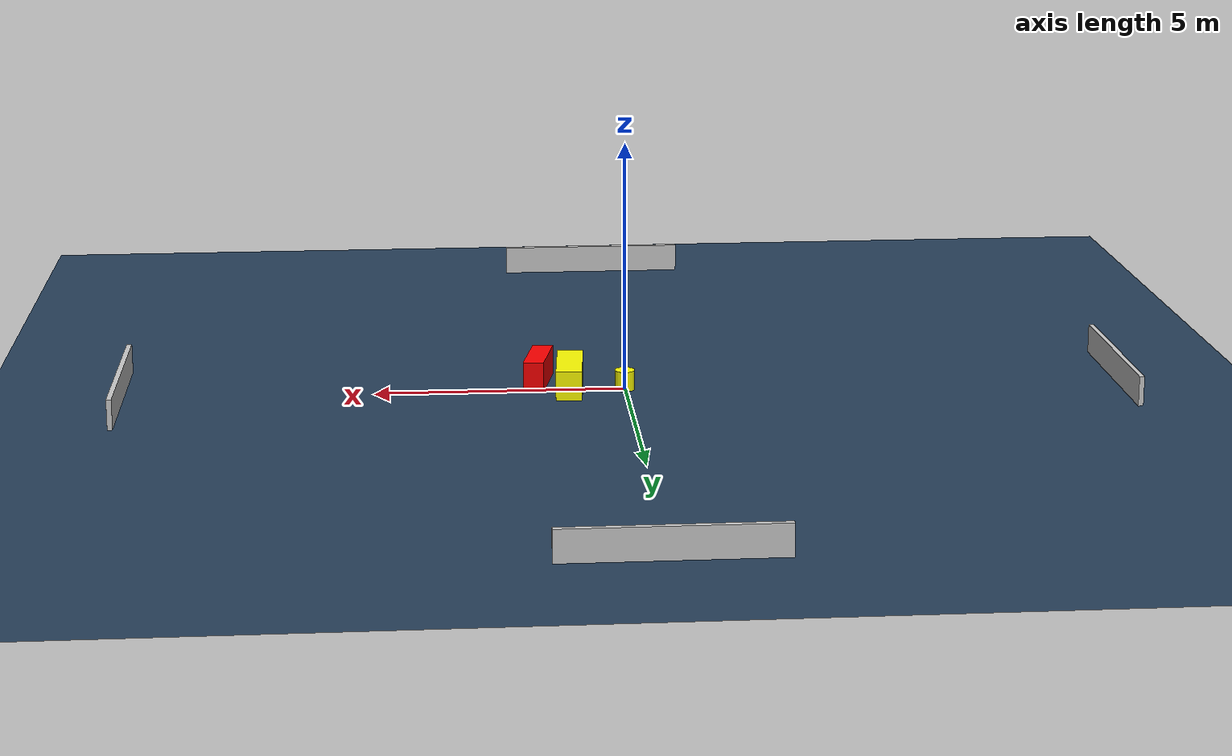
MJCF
<?xml version="1.0" ?>
<mujoco model="generated_environment">
  <option timestep="0.01" integrator="RK4" cone="elliptic"/>
  <default>
    <geom density="1"/>
  </default>
  <asset>
    <texture builtin="gradient" height="3072" name="skybox" rgb1="0.3 0.5 0.7" rgb2="0 0 0" type="skybox" width="512"/>
    <texture builtin="checker" height="300" name="groundplane" rgb1="0.2 0.3 0.4" rgb2="0.1 0.2 0.3" type="2d" width="300"/>
    <material name="groundplane" reflectance="0.2" texrepeat="5 5" texture="groundplane"/>
  </asset>
  <worldbody>
    <light dir="0 0 -1" directional="true" pos="0 0 1.5"/>
    <geom condim="3" friction="0.5 0.005 0.001" material="groundplane" name="floor" pos="0 0 0" size="0 0 0.05" type="plane"/>
    <body name="walls">
      <geom name="wall_1" condim="4" pos="-10.0 0.0 0.3" rgba="0.800000011920929 0.800000011920929 0.800000011920929 1.0" size="0.05 2.0 0.3" type="box"/>
      <geom name="wall_2" condim="4" pos="10.0 0.0 0.3" rgba="0.800000011920929 0.800000011920929 0.800000011920929 1.0" size="0.05 2.0 0.3" type="box"/>
      <geom name="wall_3" condim="4" pos="0.0 -10.0 0.3" rgba="0.800000011920929 0.800000011920929 0.800000011920929 1.0" size="2.0 0.05 0.3" type="box"/>
      <geom name="wall_4" condim="4" pos="0.0 10.0 0.3" rgba="0.800000011920929 0.800000011920929 0.800000011920929 1.0" size="2.0 0.05 0.3" type="box"/>
    </body>
    <body name="robot">
      <joint name="joint_x" type="slide" pos="0 0 0" axis="1 0 0"/>
      <joint name="joint_y" type="slide" pos="0 0 0" axis="0 1 0"/>
      <geom name="robot" type="cylinder" pos="0.0 0.0 0.2" size="0.2 0.2 0.0" mass="5.0" friction="1.0 0.005 0.0001" condim="4" rgba="1.0 1.0 0.0 1.0"/>
    </body>
    <body name="obstacle_1_movable">
      <geom name="obstacle_1_movable" condim="4" pos="1.105601291949922 -0.03370950616278782 0.3" euler="0 0 175.75806496905648" friction="0.0 0.005 0.001" rgba="1.0 1.0 0.0 1.0" size="0.260076839407522 0.7962116549419966 0.3" type="box" mass="0.1"/>
      <joint type="free"/>
    </body>
    <body name="obstacle_2_static">
      <geom name="obstacle_2_static" condim="4" pos="1.706693623200321 -0.5993174933028685 0.3" euler="0 0 258.77029109372654" friction="0.0 0.005 0.001" rgba="1.0 0.0 0.0 1.0" size="0.6656161225352601 0.20475478071022998 0.3" type="box"/>
    </body>
  </worldbody>
  <actuator>
    <motor name="actuator_x" joint="joint_x" gear="1" ctrlrange="-1 1"/>
    <motor name="actuator_y" joint="joint_y" gear="1" ctrlrange="-1 1"/>
  </actuator>
</mujoco>
